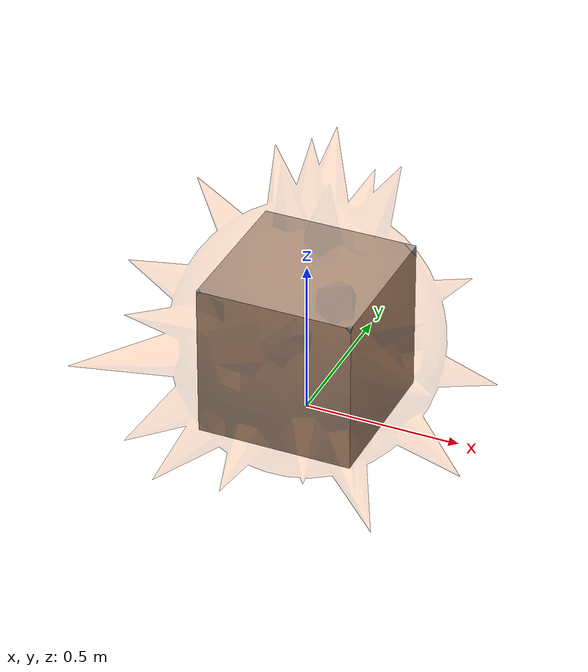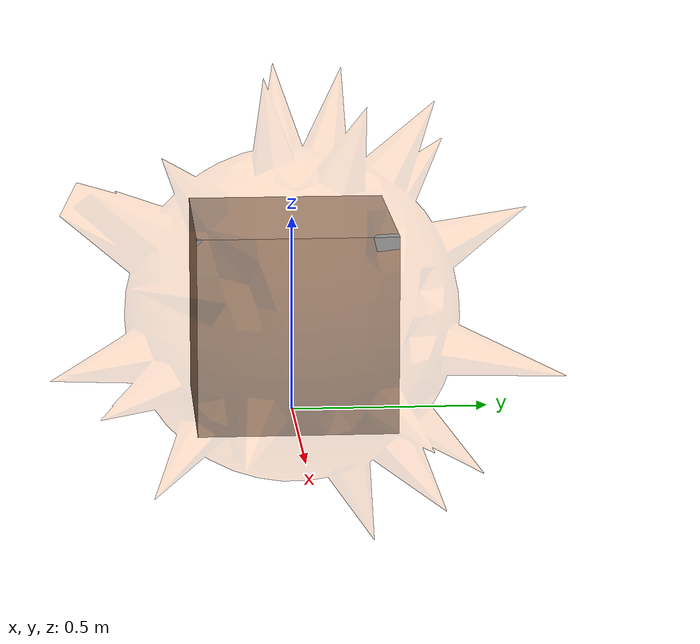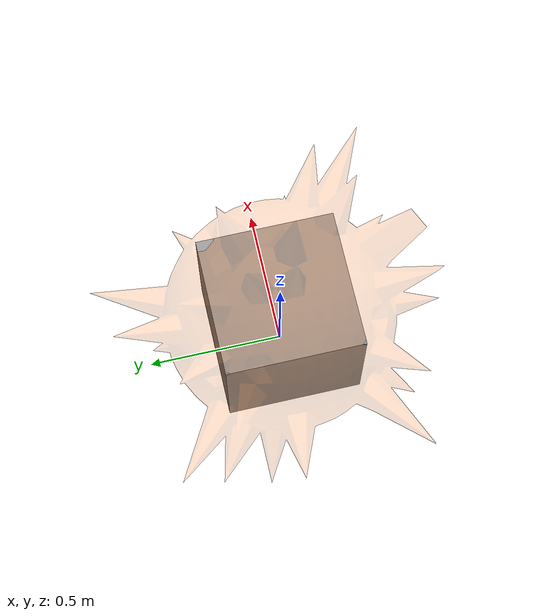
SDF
<?xml version="1.0" ?>
<sdf version="1.6">
  <model name="vis_cue_repel">
    <static>false</static>
    <pose>0 0 0.25 0 0 0</pose>
    <link name='vis_cue_repel'>
      <inertial>
        <mass>1</mass>
        <inertia>
          <ixx>0.166667</ixx>
          <ixy>0</ixy>
          <ixz>0</ixz>
          <iyy>0.166667</iyy>
          <iyz>0</iyz>
          <izz>0.166667</izz>
        </inertia>
      </inertial>
      <collision name='collision'>
        <geometry>
          <box>
            <size>0.5 0.5 0.5</size>
          </box>
        </geometry>
        <max_contacts>10</max_contacts>
        <surface>
          <contact>
            <ode/>
          </contact>
          <bounce/>
          <friction>
            <torsional>
              <ode/>
            </torsional>
            <ode/>
          </friction>
        </surface>
      </collision>
      <visual name='box_visual'>
        <geometry>
          <box>
            <size>0.5 0.5 0.5</size>
          </box>
        </geometry>
        <material>
          <script>
            <name>Gazebo/Grey</name>
            <uri>file://media/materials/scripts/gazebo.material</uri>
          </script>
        </material>
      </visual>
      <visual name='cue_visual'>
        <geometry>
          <mesh>
            <uri>model://repelling_cue_2.dae</uri>
            <scale>0.85 0.85 0.85</scale>
          </mesh>
        </geometry>
        <material>
          <ambient>1 0.4 0 0.2</ambient>
          <diffuse>1 0.4 0 0.2</diffuse>
          <specular>1 0.4 0 0.5</specular>
          <emissive>0.5 0.2 0 0.1</emissive>
        </material>
      </visual>
      <self_collide>0</self_collide>
      <kinematic>0</kinematic>
    </link>
  </model>
</sdf>
